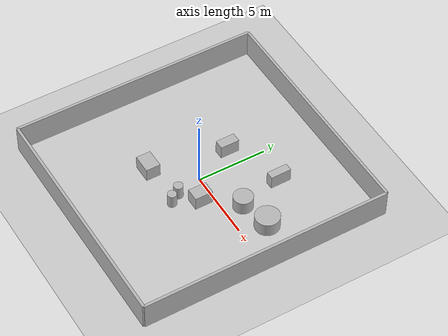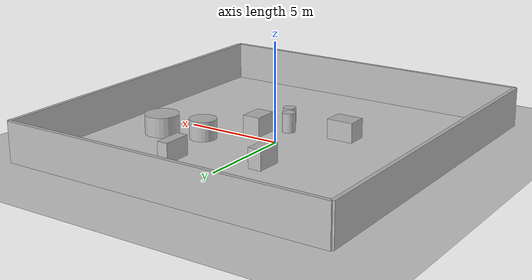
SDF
<?xml version="1.0"?>
<sdf version="1.6">
  <world name="env_83">

    <include><uri>model://ground_plane</uri></include>
    <include><uri>model://sun</uri></include>

    <!-- WALLS -->
    <model name="wall_north"><static>true</static><pose>0 8.931016835119753 1 0 0 0</pose>
      <link name="link"><collision name="collision">
        <geometry><box><size>16.976890665892547 0.2 2</size></box></geometry>
      </collision><visual name="visual">
        <geometry><box><size>16.976890665892547 0.2 2</size></box></geometry>
      </visual></link>
    </model>

    <model name="wall_south"><static>true</static><pose>0 -8.931016835119753 1 0 0 0</pose>
      <link name="link"><collision name="collision">
        <geometry><box><size>16.976890665892547 0.2 2</size></box></geometry>
      </collision><visual name="visual">
        <geometry><box><size>16.976890665892547 0.2 2</size></box></geometry>
      </visual></link>
    </model>

    <model name="wall_east"><static>true</static><pose>8.488445332946274 0 1 0 0 1.57</pose>
      <link name="link"><collision name="collision">
        <geometry><box><size>17.862033670239505 0.2 2</size></box></geometry>
      </collision><visual name="visual">
        <geometry><box><size>17.862033670239505 0.2 2</size></box></geometry>
      </visual></link>
    </model>

    <model name="wall_west"><static>true</static><pose>-8.488445332946274 0 1 0 0 1.57</pose>
      <link name="link"><collision name="collision">
        <geometry><box><size>17.862033670239505 0.2 2</size></box></geometry>
      </collision><visual name="visual">
        <geometry><box><size>17.862033670239505 0.2 2</size></box></geometry>
      </visual></link>
    </model>

    <!-- SENSOR -->

    <model name="lidar_sensor">
      <static>true</static>
      <pose>7.859095676666174 -5.796839996102384 0.4 0 0 0</pose>
      <link name="link">
        <sensor name="lidar" type="ray">
          <pose>0 0 0 0 0 0</pose>
          <visualize>true</visualize>
          <always_on>true</always_on>
          <update_rate>10</update_rate>
          <ray>
            <scan><horizontal>
              <samples>180</samples>
              <resolution>1</resolution>
              <min_angle>-3.14159</min_angle>
              <max_angle>3.14159</max_angle>
            </horizontal></scan>
            <range><min>0.15</min><max>20.0</max><resolution>0.01</resolution></range>
          </ray>
          <plugin name="lidar_plugin" filename="liblidar_plugin.so"/>
        </sensor>
      </link>
    </model>

    <!-- OBSTACLES -->

    <model name="obstacle_0">
      <static>true</static>
      <pose>-2.3990729208546364 -2.4897234784583153 0.5 0 0 0</pose>
      <link name="link">
        <collision name="collision">
          <geometry><box><size>1.37 1.04 1.0</size></box></geometry>
        </collision>
        <visual name="visual">
          <geometry><box><size>1.37 1.04 1.0</size></box></geometry>
        </visual>
      </link>
    </model>

    <model name="obstacle_1">
      <static>true</static>
      <pose>2.717341118108754 4.450995722993818 0.5 0 0 0</pose>
      <link name="link">
        <collision name="collision">
          <geometry><box><size>0.57 1.49 1.0</size></box></geometry>
        </collision>
        <visual name="visual">
          <geometry><box><size>0.57 1.49 1.0</size></box></geometry>
        </visual>
      </link>
    </model>

    <model name="obstacle_2">
      <static>true</static>
      <pose>1.583186967591864 -0.8380102691857347 0.5 0 0 0</pose>
      <link name="link">
        <collision name="collision">
          <geometry><box><size>0.94 1.29 1.0</size></box></geometry>
        </collision>
        <visual name="visual">
          <geometry><box><size>0.94 1.29 1.0</size></box></geometry>
        </visual>
      </link>
    </model>

    <model name="obstacle_3">
      <static>true</static>
      <pose>5.546370120287904 1.8007235422502266 0.5 0 0 0</pose>
      <link name="link">
        <collision name="collision">
          <geometry><cylinder><radius>0.86</radius><length>1.0</length></cylinder></geometry>
        </collision>
        <visual name="visual">
          <geometry><cylinder><radius>0.86</radius><length>1.0</length></cylinder></geometry>
        </visual>
      </link>
    </model>

    <model name="obstacle_4">
      <static>true</static>
      <pose>0.4326949492694592 -1.8444508891338094 0.5 0 0 0</pose>
      <link name="link">
        <collision name="collision">
          <geometry><cylinder><radius>0.33</radius><length>1.0</length></cylinder></geometry>
        </collision>
        <visual name="visual">
          <geometry><cylinder><radius>0.33</radius><length>1.0</length></cylinder></geometry>
        </visual>
      </link>
    </model>

    <model name="obstacle_5">
      <static>true</static>
      <pose>3.3674669316938317 1.3122519675197974 0.5 0 0 0</pose>
      <link name="link">
        <collision name="collision">
          <geometry><cylinder><radius>0.69</radius><length>1.0</length></cylinder></geometry>
        </collision>
        <visual name="visual">
          <geometry><cylinder><radius>0.69</radius><length>1.0</length></cylinder></geometry>
        </visual>
      </link>
    </model>

    <model name="obstacle_6">
      <static>true</static>
      <pose>-1.275469897102024 2.921757080641198 0.5 0 0 0</pose>
      <link name="link">
        <collision name="collision">
          <geometry><box><size>0.7 1.36 1.0</size></box></geometry>
        </collision>
        <visual name="visual">
          <geometry><box><size>0.7 1.36 1.0</size></box></geometry>
        </visual>
      </link>
    </model>

    <model name="obstacle_7">
      <static>true</static>
      <pose>0.8553472217041502 -2.5610782625184543 0.5 0 0 0</pose>
      <link name="link">
        <collision name="collision">
          <geometry><cylinder><radius>0.32</radius><length>1.0</length></cylinder></geometry>
        </collision>
        <visual name="visual">
          <geometry><cylinder><radius>0.32</radius><length>1.0</length></cylinder></geometry>
        </visual>
      </link>
    </model>

  </world>
</sdf>
